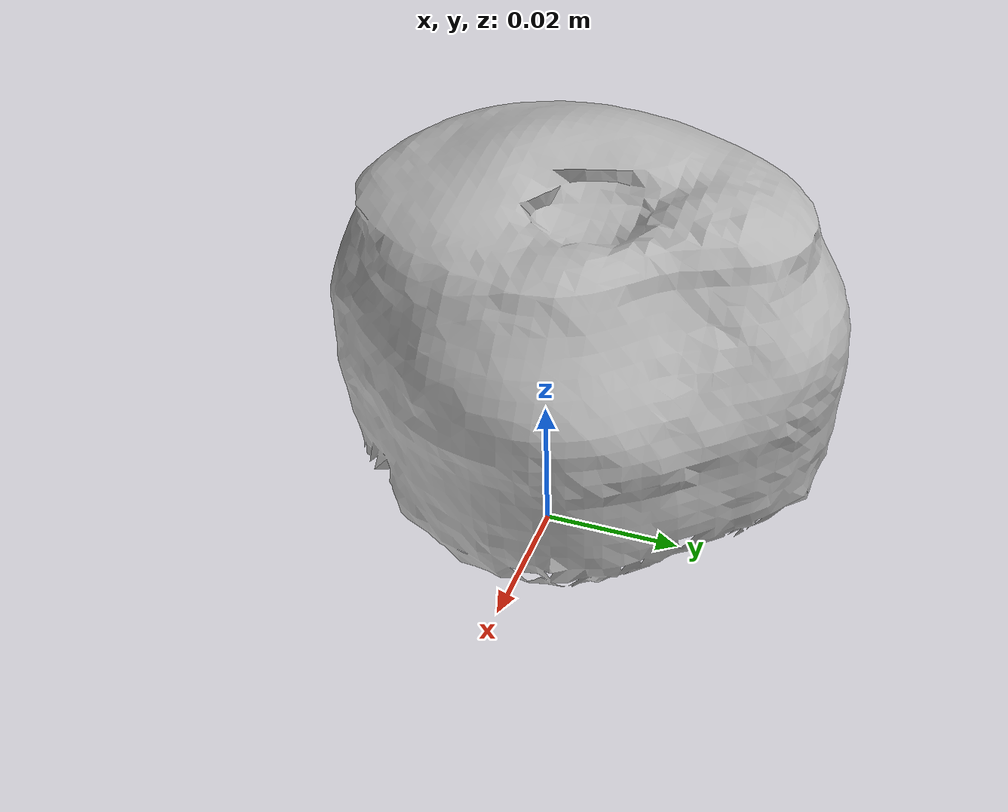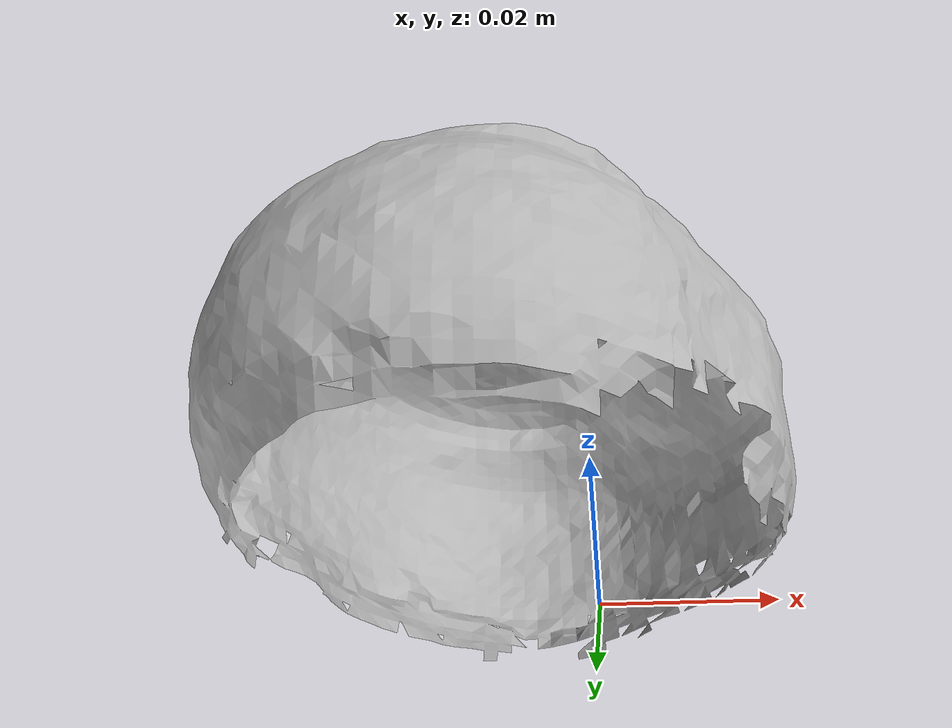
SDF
<?xml version="1.0" ?>
<sdf version="1.4">
  <model name="015_peach">
    <pose>0 0 0  0 0 0</pose>
    <link name="body">
      <inertial>
        <!-- Volume:  1.6760841400e-04 -->
        <mass> 1.0 </mass>
        <!-- Center of mass: -1.3175580000e-02 -2.1917000000e-04  2.9026870000e-02 -->
        <pose> -1.3175580000e-02 -2.1917000000e-04  2.9026870000e-02 0 0 0 </pose>
        <!-- Inertia matrix -->
        <inertia>
          <ixx>  4.6010816199e-04 </ixx>
          <ixy> -3.7989047495e-05 </ixy>
          <ixz>  3.5192212964e-06 </ixz>
          <iyy>  4.4087150899e-04 </iyy>
          <iyz> -2.3917969894e-06 </iyz>
          <izz>  5.5110417070e-04 </izz>
        </inertia>
      </inertial>
      <visual name="visual">
        <geometry>
          <mesh>
            <uri>model://015_peach/nontextured.stl</uri>
          </mesh>
        </geometry>
      </visual>
      <collision name="collision">
        <geometry>
          <mesh>
            <uri>model://015_peach/nontextured.stl</uri>
          </mesh>
        </geometry>
        <max_contacts>10</max_contacts>
        <surface>
          <friction>
            <ode>
              <mu>0.8</mu>
              <mu2>0.8</mu2>
              <slip1>0</slip1>
              <slip2>0</slip2>
            </ode>
            <torsional>
              <ode/>
            </torsional>
          </friction>
          <contact>
            <ode>
              <kp>1000000.0</kp>
              <kd>1.0</kd>
              <max_vel>0.0</max_vel>
            </ode>
          </contact>
        </surface>
      </collision>
    </link>
  </model>
</sdf>
